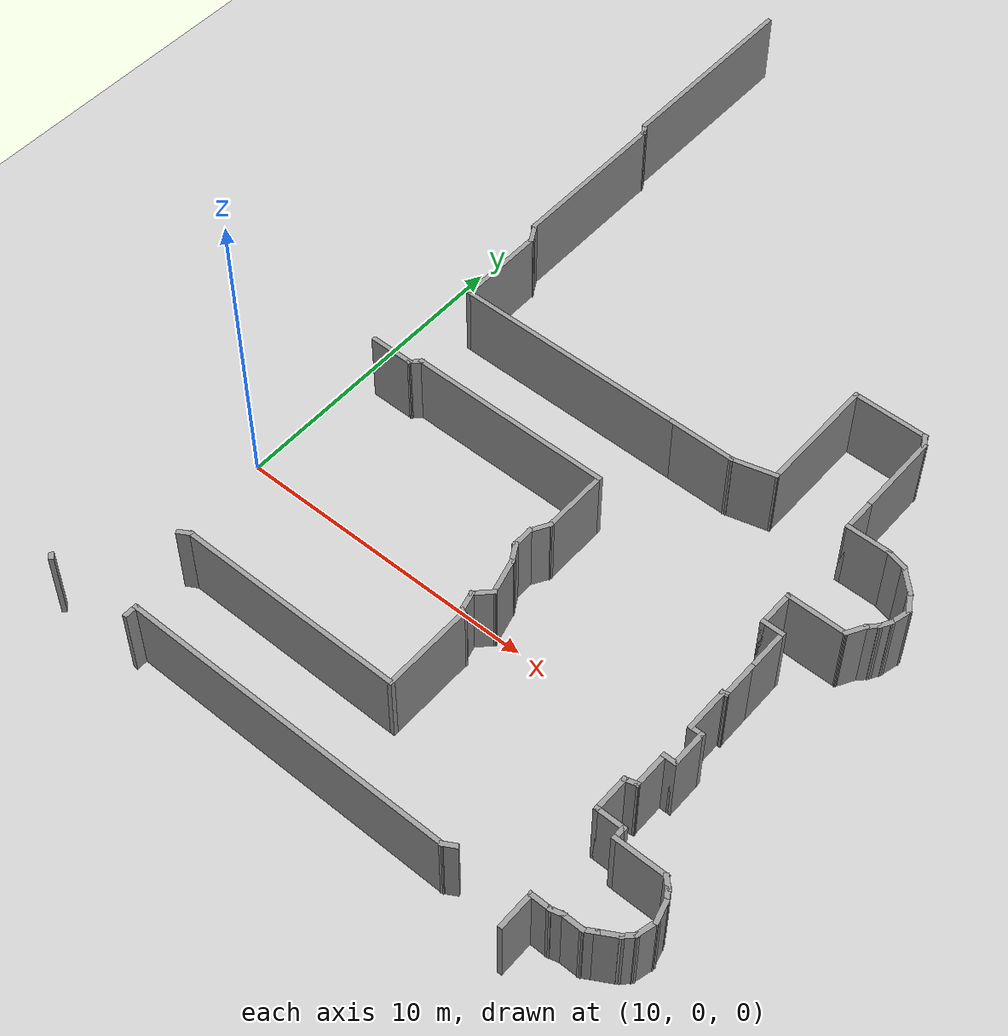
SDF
<sdf version="1.7">
 <world name="default">
  <model name="ground_plane">
   <static>1</static>
   <link name="link">
    <collision name="collision">
     <geometry><plane><normal>0 0 1</normal><size>100 100</size></plane></geometry>
     <surface><friction><ode><mu>100</mu><mu2>50</mu2></ode></friction></surface>
    </collision>
    <visual name="visual">
     <cast_shadows>0</cast_shadows>
     <geometry><plane><normal>0 0 1</normal><size>100 100</size></plane></geometry>
     <material>
      <script><uri>file://media/materials/scripts/gazebo.material</uri><name>Gazebo/Grey</name></script>
     </material>
    </visual>
   </link>
  </model>
  <model name="a10_simulation">
   <pose>8.94312 -0.455858 0 0 -0 0</pose>
   <link name="Wall_100">
    <collision name="Wall_100_Collision">
     <geometry><box><size>1.5 0.15 2.5</size></box></geometry>
     <pose>0 0 1.25 0 -0 0</pose>
    </collision>
    <visual name="Wall_100_Visual">
     <pose>0 0 1.25 0 -0 0</pose>
     <geometry><box><size>1.5 0.15 2.5</size></box></geometry>
     <material>
      <script><uri>file://media/materials/scripts/gazebo.material</uri><name>Gazebo/Grey</name></script>
      <ambient>1 1 1 1</ambient>
     </material>
     <meta><layer>0</layer></meta>
    </visual>
    <pose>16.9784 3.51275 0 0 -0 1.5708</pose>
   </link>
   <link name="Wall_101">
    <collision name="Wall_101_Collision">
     <geometry><box><size>0.75 0.15 2.5</size></box></geometry>
     <pose>0 0 1.25 0 -0 0</pose>
    </collision>
    <visual name="Wall_101_Visual">
     <pose>0 0 1.25 0 -0 0</pose>
     <geometry><box><size>0.75 0.15 2.5</size></box></geometry>
     <material>
      <script><uri>file://media/materials/scripts/gazebo.material</uri><name>Gazebo/Grey</name></script>
      <ambient>1 1 1 1</ambient>
     </material>
     <meta><layer>0</layer></meta>
    </visual>
    <pose>16.6784 4.18775 0 0 -0 3.14159</pose>
   </link>
   <link name="Wall_102">
    <collision name="Wall_102_Collision">
     <geometry><box><size>1.25 0.15 2.5</size></box></geometry>
     <pose>0 0 1.25 0 -0 0</pose>
    </collision>
    <visual name="Wall_102_Visual">
     <pose>0 0 1.25 0 -0 0</pose>
     <geometry><box><size>1.25 0.15 2.5</size></box></geometry>
     <material>
      <script><uri>file://media/materials/scripts/gazebo.material</uri><name>Gazebo/Grey</name></script>
      <ambient>1 1 1 1</ambient>
     </material>
     <meta><layer>0</layer></meta>
    </visual>
    <pose>16.3784 4.73775 0 0 -0 1.5708</pose>
   </link>
   <link name="Wall_103">
    <collision name="Wall_103_Collision">
     <geometry><box><size>2 0.15 2.5</size></box></geometry>
     <pose>0 0 1.25 0 -0 0</pose>
    </collision>
    <visual name="Wall_103_Visual">
     <pose>0 0 1.25 0 -0 0</pose>
     <geometry><box><size>2 0.15 2.5</size></box></geometry>
     <material>
      <script><uri>file://media/materials/scripts/gazebo.material</uri><name>Gazebo/Grey</name></script>
      <ambient>1 1 1 1</ambient>
     </material>
     <meta><layer>0</layer></meta>
    </visual>
    <pose>17.3034 5.28775 0 0 -0 0</pose>
   </link>
   <link name="Wall_104">
    <collision name="Wall_104_Collision">
     <geometry><box><size>0.75 0.15 2.5</size></box></geometry>
     <pose>0 0 1.25 0 -0 0</pose>
    </collision>
    <visual name="Wall_104_Visual">
     <pose>0 0 1.25 0 -0 0</pose>
     <geometry><box><size>0.75 0.15 2.5</size></box></geometry>
     <material>
      <script><uri>file://media/materials/scripts/gazebo.material</uri><name>Gazebo/Grey</name></script>
      <ambient>1 1 1 1</ambient>
     </material>
     <meta><layer>0</layer></meta>
    </visual>
    <pose>18.3784 5.54756 0 0 -0 1.0472</pose>
   </link>
   <link name="Wall_105">
    <collision name="Wall_105_Collision">
     <geometry><box><size>0.5 0.15 2.5</size></box></geometry>
     <pose>0 0 1.25 0 -0 0</pose>
    </collision>
    <visual name="Wall_105_Visual">
     <pose>0 0 1.25 0 -0 0</pose>
     <geometry><box><size>0.5 0.15 2.5</size></box></geometry>
     <material>
      <script><uri>file://media/materials/scripts/gazebo.material</uri><name>Gazebo/Grey</name></script>
      <ambient>1 1 1 1</ambient>
     </material>
     <meta><layer>0</layer></meta>
    </visual>
    <pose>18.6522 5.93111 0 0 -0 0.785398</pose>
   </link>
   <link name="Wall_106">
    <collision name="Wall_106_Collision">
     <geometry><box><size>0.5 0.15 2.5</size></box></geometry>
     <pose>0 0 1.25 0 -0 0</pose>
    </collision>
    <visual name="Wall_106_Visual">
     <pose>0 0 1.25 0 -0 0</pose>
     <geometry><box><size>0.5 0.15 2.5</size></box></geometry>
     <material>
      <script><uri>file://media/materials/scripts/gazebo.material</uri><name>Gazebo/Grey</name></script>
      <ambient>1 1 1 1</ambient>
     </material>
     <meta><layer>0</layer></meta>
    </visual>
    <pose>18.8634 6.20641 0 0 -0 1.0472</pose>
   </link>
   <link name="Wall_107">
    <collision name="Wall_107_Collision">
     <geometry><box><size>0.75 0.15 2.5</size></box></geometry>
     <pose>0 0 1.25 0 -0 0</pose>
    </collision>
    <visual name="Wall_107_Visual">
     <pose>0 0 1.25 0 -0 0</pose>
     <geometry><box><size>0.75 0.15 2.5</size></box></geometry>
     <material>
      <script><uri>file://media/materials/scripts/gazebo.material</uri><name>Gazebo/Grey</name></script>
      <ambient>1 1 1 1</ambient>
     </material>
     <meta><layer>0</layer></meta>
    </visual>
    <pose>19.0286 6.64774 0 0 -0 1.309</pose>
   </link>
   <link name="Wall_108">
    <collision name="Wall_108_Collision">
     <geometry><box><size>0.75 0.15 2.5</size></box></geometry>
     <pose>0 0 1.25 0 -0 0</pose>
    </collision>
    <visual name="Wall_108_Visual">
     <pose>0 0 1.25 0 -0 0</pose>
     <geometry><box><size>0.75 0.15 2.5</size></box></geometry>
     <material>
      <script><uri>file://media/materials/scripts/gazebo.material</uri><name>Gazebo/Grey</name></script>
      <ambient>1 1 1 1</ambient>
     </material>
     <meta><layer>0</layer></meta>
    </visual>
    <pose>18.9562 7.19732 0 0 -0 2.0944</pose>
   </link>
   <link name="Wall_109">
    <collision name="Wall_109_Collision">
     <geometry><box><size>1 0.15 2.5</size></box></geometry>
     <pose>0 0 1.25 0 -0 0</pose>
    </collision>
    <visual name="Wall_109_Visual">
     <pose>0 0 1.25 0 -0 0</pose>
     <geometry><box><size>1 0.15 2.5</size></box></geometry>
     <material>
      <script><uri>file://media/materials/scripts/gazebo.material</uri><name>Gazebo/Grey</name></script>
      <ambient>1 1 1 1</ambient>
     </material>
     <meta><layer>0</layer></meta>
    </visual>
    <pose>18.5057 7.75765 0 0 -0 2.35619</pose>
   </link>
   <link name="Wall_111">
    <collision name="Wall_111_Collision">
     <geometry><box><size>0.75 0.15 2.5</size></box></geometry>
     <pose>0 0 1.25 0 -0 0</pose>
    </collision>
    <visual name="Wall_111_Visual">
     <pose>0 0 1.25 0 -0 0</pose>
     <geometry><box><size>0.75 0.15 2.5</size></box></geometry>
     <material>
      <script><uri>file://media/materials/scripts/gazebo.material</uri><name>Gazebo/Grey</name></script>
      <ambient>1 1 1 1</ambient>
     </material>
     <meta><layer>0</layer></meta>
    </visual>
    <pose>17.9154 8.13582 0 0 -0 2.87979</pose>
   </link>
   <link name="Wall_112">
    <collision name="Wall_112_Collision">
     <geometry><box><size>1.5 0.15 2.5</size></box></geometry>
     <pose>0 0 1.25 0 -0 0</pose>
    </collision>
    <visual name="Wall_112_Visual">
     <pose>0 0 1.25 0 -0 0</pose>
     <geometry><box><size>1.5 0.15 2.5</size></box></geometry>
     <material>
      <script><uri>file://media/materials/scripts/gazebo.material</uri><name>Gazebo/Grey</name></script>
      <ambient>1 1 1 1</ambient>
     </material>
     <meta><layer>0</layer></meta>
    </visual>
    <pose>16.9506 8.21346 0 0 -0 3.14159</pose>
   </link>
   <link name="Wall_113">
    <collision name="Wall_113_Collision">
     <geometry><box><size>1.25 0.15 2.5</size></box></geometry>
     <pose>0 0 1.25 0 -0 0</pose>
    </collision>
    <visual name="Wall_113_Visual">
     <pose>0 0 1.25 0 -0 0</pose>
     <geometry><box><size>1.25 0.15 2.5</size></box></geometry>
     <material>
      <script><uri>file://media/materials/scripts/gazebo.material</uri><name>Gazebo/Grey</name></script>
      <ambient>1 1 1 1</ambient>
     </material>
     <meta><layer>0</layer></meta>
    </visual>
    <pose>16.2756 8.76346 0 0 -0 1.5708</pose>
   </link>
   <link name="Wall_114">
    <collision name="Wall_114_Collision">
     <geometry><box><size>2.75 0.15 2.5</size></box></geometry>
     <pose>0 0 1.25 0 -0 0</pose>
    </collision>
    <visual name="Wall_114_Visual">
     <pose>0 0 1.25 0 -0 0</pose>
     <geometry><box><size>2.75 0.15 2.5</size></box></geometry>
     <material>
      <script><uri>file://media/materials/scripts/gazebo.material</uri><name>Gazebo/Grey</name></script>
      <ambient>1 1 1 1</ambient>
     </material>
     <meta><layer>0</layer></meta>
    </visual>
    <pose>16.2756 10.6135 0 0 -0 1.5708</pose>
   </link>
   <link name="Wall_115">
    <collision name="Wall_115_Collision">
     <geometry><box><size>0.5 0.15 2.5</size></box></geometry>
     <pose>0 0 1.25 0 -0 0</pose>
    </collision>
    <visual name="Wall_115_Visual">
     <pose>0 0 1.25 0 -0 0</pose>
     <geometry><box><size>0.5 0.15 2.5</size></box></geometry>
     <material>
      <script><uri>file://media/materials/scripts/gazebo.material</uri><name>Gazebo/Grey</name></script>
      <ambient>1 1 1 1</ambient>
     </material>
     <meta><layer>0</layer></meta>
    </visual>
    <pose>16.1881 12.065 0 0 -0 2.0944</pose>
   </link>
   <link name="Wall_116">
    <collision name="Wall_116_Collision">
     <geometry><box><size>2.5 0.15 2.5</size></box></geometry>
     <pose>0 0 1.25 0 -0 0</pose>
    </collision>
    <visual name="Wall_116_Visual">
     <pose>0 0 1.25 0 -0 0</pose>
     <geometry><box><size>2.5 0.15 2.5</size></box></geometry>
     <material>
      <script><uri>file://media/materials/scripts/gazebo.material</uri><name>Gazebo/Grey</name></script>
      <ambient>1 1 1 1</ambient>
     </material>
     <meta><layer>0</layer></meta>
    </visual>
    <pose>14.9256 12.2166 0 0 -0 3.14159</pose>
   </link>
   <link name="Wall_117">
    <collision name="Wall_117_Collision">
     <geometry><box><size>4 0.15 2.5</size></box></geometry>
     <pose>0 0 1.25 0 -0 0</pose>
    </collision>
    <visual name="Wall_117_Visual">
     <pose>0 0 1.25 0 -0 0</pose>
     <geometry><box><size>4 0.15 2.5</size></box></geometry>
     <material>
      <script><uri>file://media/materials/scripts/gazebo.material</uri><name>Gazebo/Grey</name></script>
      <ambient>1 1 1 1</ambient>
     </material>
     <meta><layer>0</layer></meta>
    </visual>
    <pose>13.7506 10.2916 0 0 -0 -1.5708</pose>
   </link>
   <link name="Wall_118">
    <collision name="Wall_118_Collision">
     <geometry><box><size>1.5 0.15 2.5</size></box></geometry>
     <pose>0 0 1.25 0 -0 0</pose>
    </collision>
    <visual name="Wall_118_Visual">
     <pose>0 0 1.25 0 -0 0</pose>
     <geometry><box><size>1.5 0.15 2.5</size></box></geometry>
     <material>
      <script><uri>file://media/materials/scripts/gazebo.material</uri><name>Gazebo/Grey</name></script>
      <ambient>1 1 1 1</ambient>
     </material>
     <meta><layer>0</layer></meta>
    </visual>
    <pose>13.0986 8.19187 0 0 -0 -2.87979</pose>
   </link>
   <link name="Wall_119">
    <collision name="Wall_119_Collision">
     <geometry><box><size>2.25 0.15 2.5</size></box></geometry>
     <pose>0 0 1.25 0 -0 0</pose>
    </collision>
    <visual name="Wall_119_Visual">
     <pose>0 0 1.25 0 -0 0</pose>
     <geometry><box><size>2.25 0.15 2.5</size></box></geometry>
     <material>
      <script><uri>file://media/materials/scripts/gazebo.material</uri><name>Gazebo/Grey</name></script>
      <ambient>1 1 1 1</ambient>
     </material>
     <meta><layer>0</layer></meta>
    </visual>
    <pose>11.3966 8.01717 0 0 -0 3.14159</pose>
   </link>
   <link name="Wall_120">
    <collision name="Wall_120_Collision">
     <geometry><box><size>7.75 0.15 2.5</size></box></geometry>
     <pose>0 0 1.25 0 -0 0</pose>
    </collision>
    <visual name="Wall_120_Visual">
     <pose>0 0 1.25 0 -0 0</pose>
     <geometry><box><size>7.75 0.15 2.5</size></box></geometry>
     <material>
      <script><uri>file://media/materials/scripts/gazebo.material</uri><name>Gazebo/Grey</name></script>
      <ambient>1 1 1 1</ambient>
     </material>
     <meta><layer>0</layer></meta>
    </visual>
    <pose>6.54662 8.01717 0 0 -0 3.14159</pose>
   </link>
   <link name="Wall_121">
    <collision name="Wall_121_Collision">
     <geometry><box><size>3 0.15 2.5</size></box></geometry>
     <pose>0 0 1.25 0 -0 0</pose>
    </collision>
    <visual name="Wall_121_Visual">
     <pose>0 0 1.25 0 -0 0</pose>
     <geometry><box><size>3 0.15 2.5</size></box></geometry>
     <material>
      <script><uri>file://media/materials/scripts/gazebo.material</uri><name>Gazebo/Grey</name></script>
      <ambient>1 1 1 1</ambient>
     </material>
     <meta><layer>0</layer></meta>
    </visual>
    <pose>2.74662 9.44217 0 0 -0 1.5708</pose>
   </link>
   <link name="Wall_122">
    <collision name="Wall_122_Collision">
     <geometry><box><size>0.75 0.15 2.5</size></box></geometry>
     <pose>0 0 1.25 0 -0 0</pose>
    </collision>
    <visual name="Wall_122_Visual">
     <pose>0 0 1.25 0 -0 0</pose>
     <geometry><box><size>0.75 0.15 2.5</size></box></geometry>
     <material>
      <script><uri>file://media/materials/scripts/gazebo.material</uri><name>Gazebo/Grey</name></script>
      <ambient>1 1 1 1</ambient>
     </material>
     <meta><layer>0</layer></meta>
    </visual>
    <pose>2.59662 11.127 0 0 -0 2.0944</pose>
   </link>
   <link name="Wall_123">
    <collision name="Wall_123_Collision">
     <geometry><box><size>5.5 0.15 2.5</size></box></geometry>
     <pose>0 0 1.25 0 -0 0</pose>
    </collision>
    <visual name="Wall_123_Visual">
     <pose>0 0 1.25 0 -0 0</pose>
     <geometry><box><size>5.5 0.15 2.5</size></box></geometry>
     <material>
      <script><uri>file://media/materials/scripts/gazebo.material</uri><name>Gazebo/Grey</name></script>
      <ambient>1 1 1 1</ambient>
     </material>
     <meta><layer>0</layer></meta>
    </visual>
    <pose>2.44662 14.0618 0 0 -0 1.5708</pose>
   </link>
   <link name="Wall_125">
    <collision name="Wall_125_Collision">
     <geometry><box><size>0.5 0.15 2.5</size></box></geometry>
     <pose>0 0 1.25 0 -0 0</pose>
    </collision>
    <visual name="Wall_125_Visual">
     <pose>0 0 1.25 0 -0 0</pose>
     <geometry><box><size>0.5 0.15 2.5</size></box></geometry>
     <material>
      <script><uri>file://media/materials/scripts/gazebo.material</uri><name>Gazebo/Grey</name></script>
      <ambient>1 1 1 1</ambient>
     </material>
     <meta><layer>0</layer></meta>
    </visual>
    <pose>2.35912 16.8883 0 0 -0 2.0944</pose>
   </link>
   <link name="Wall_126">
    <collision name="Wall_126_Collision">
     <geometry><box><size>6.75 0.15 2.5</size></box></geometry>
     <pose>0 0 1.25 0 -0 0</pose>
    </collision>
    <visual name="Wall_126_Visual">
     <pose>0 0 1.25 0 -0 0</pose>
     <geometry><box><size>6.75 0.15 2.5</size></box></geometry>
     <material>
      <script><uri>file://media/materials/scripts/gazebo.material</uri><name>Gazebo/Grey</name></script>
      <ambient>1 1 1 1</ambient>
     </material>
     <meta><layer>0</layer></meta>
    </visual>
    <pose>2.27162 20.3399 0 0 -0 1.5708</pose>
   </link>
   <link name="Wall_199">
    <collision name="Wall_199_Collision">
     <geometry><box><size>0.5 0.15 2.5</size></box></geometry>
     <pose>0 0 1.25 0 -0 0</pose>
    </collision>
    <visual name="Wall_199_Visual">
     <pose>0 0 1.25 0 -0 0</pose>
     <geometry><box><size>0.5 0.15 2.5</size></box></geometry>
     <material>
      <script><uri>file://media/materials/scripts/gazebo.material</uri><name>Gazebo/Grey</name></script>
      <ambient>1 1 1 1</ambient>
     </material>
     <meta><layer>0</layer></meta>
    </visual>
    <pose>2.65308 -3.71336 0 0 -0 0.523599</pose>
   </link>
   <link name="Wall_200">
    <collision name="Wall_200_Collision">
     <geometry><box><size>7.5 0.15 2.5</size></box></geometry>
     <pose>0 0 1.25 0 -0 0</pose>
    </collision>
    <visual name="Wall_200_Visual">
     <pose>0 0 1.25 0 -0 0</pose>
     <geometry><box><size>7.5 0.15 2.5</size></box></geometry>
     <material>
      <script><uri>file://media/materials/scripts/gazebo.material</uri><name>Gazebo/Grey</name></script>
      <ambient>1 1 1 1</ambient>
     </material>
     <meta><layer>0</layer></meta>
    </visual>
    <pose>6.47963 -3.62586 0 0 -0 0</pose>
   </link>
   <link name="Wall_201">
    <collision name="Wall_201_Collision">
     <geometry><box><size>3 0.15 2.5</size></box></geometry>
     <pose>0 0 1.25 0 -0 0</pose>
    </collision>
    <visual name="Wall_201_Visual">
     <pose>0 0 1.25 0 -0 0</pose>
     <geometry><box><size>3 0.15 2.5</size></box></geometry>
     <material>
      <script><uri>file://media/materials/scripts/gazebo.material</uri><name>Gazebo/Grey</name></script>
      <ambient>1 1 1 1</ambient>
     </material>
     <meta><layer>0</layer></meta>
    </visual>
    <pose>10.1546 -2.20086 0 0 -0 1.5708</pose>
   </link>
   <link name="Wall_202">
    <collision name="Wall_202_Collision">
     <geometry><box><size>0.25 0.15 2.5</size></box></geometry>
     <pose>0 0 1.25 0 -0 0</pose>
    </collision>
    <visual name="Wall_202_Visual">
     <pose>0 0 1.25 0 -0 0</pose>
     <geometry><box><size>0.25 0.15 2.5</size></box></geometry>
     <material>
      <script><uri>file://media/materials/scripts/gazebo.material</uri><name>Gazebo/Grey</name></script>
      <ambient>1 1 1 1</ambient>
     </material>
     <meta><layer>0</layer></meta>
    </visual>
    <pose>10.1113 -0.75086 0 0 -0 2.61799</pose>
   </link>
   <link name="Wall_203">
    <collision name="Wall_203_Collision">
     <geometry><box><size>0.75 0.15 2.5</size></box></geometry>
     <pose>0 0 1.25 0 -0 0</pose>
    </collision>
    <visual name="Wall_203_Visual">
     <pose>0 0 1.25 0 -0 0</pose>
     <geometry><box><size>0.75 0.15 2.5</size></box></geometry>
     <material>
      <script><uri>file://media/materials/scripts/gazebo.material</uri><name>Gazebo/Grey</name></script>
      <ambient>1 1 1 1</ambient>
     </material>
     <meta><layer>0</layer></meta>
    </visual>
    <pose>9.99038 -0.436082 0 0 -0 1.8326</pose>
   </link>
   <link name="Wall_204">
    <collision name="Wall_204_Collision">
     <geometry><box><size>0.75 0.15 2.5</size></box></geometry>
     <pose>0 0 1.25 0 -0 0</pose>
    </collision>
    <visual name="Wall_204_Visual">
     <pose>0 0 1.25 0 -0 0</pose>
     <geometry><box><size>0.75 0.15 2.5</size></box></geometry>
     <material>
      <script><uri>file://media/materials/scripts/gazebo.material</uri><name>Gazebo/Grey</name></script>
      <ambient>1 1 1 1</ambient>
     </material>
     <meta><layer>0</layer></meta>
    </visual>
    <pose>10.1249 0.065828 0 0 -0 0.785398</pose>
   </link>
   <link name="Wall_205">
    <collision name="Wall_205_Collision">
     <geometry><box><size>1.25 0.15 2.5</size></box></geometry>
     <pose>0 0 1.25 0 -0 0</pose>
    </collision>
    <visual name="Wall_205_Visual">
     <pose>0 0 1.25 0 -0 0</pose>
     <geometry><box><size>1.25 0.15 2.5</size></box></geometry>
     <material>
      <script><uri>file://media/materials/scripts/gazebo.material</uri><name>Gazebo/Grey</name></script>
      <ambient>1 1 1 1</ambient>
     </material>
     <meta><layer>0</layer></meta>
    </visual>
    <pose>10.1946 0.809219 0 0 -0 1.8326</pose>
   </link>
   <link name="Wall_206">
    <collision name="Wall_206_Collision">
     <geometry><box><size>0.75 0.15 2.5</size></box></geometry>
     <pose>0 0 1.25 0 -0 0</pose>
    </collision>
    <visual name="Wall_206_Visual">
     <pose>0 0 1.25 0 -0 0</pose>
     <geometry><box><size>0.75 0.15 2.5</size></box></geometry>
     <material>
      <script><uri>file://media/materials/scripts/gazebo.material</uri><name>Gazebo/Grey</name></script>
      <ambient>1 1 1 1</ambient>
     </material>
     <meta><layer>0</layer></meta>
    </visual>
    <pose>9.9023 1.60029 0 0 -0 2.0944</pose>
   </link>
   <link name="Wall_207">
    <collision name="Wall_207_Collision">
     <geometry><box><size>0.75 0.15 2.5</size></box></geometry>
     <pose>0 0 1.25 0 -0 0</pose>
    </collision>
    <visual name="Wall_207_Visual">
     <pose>0 0 1.25 0 -0 0</pose>
     <geometry><box><size>0.75 0.15 2.5</size></box></geometry>
     <material>
      <script><uri>file://media/materials/scripts/gazebo.material</uri><name>Gazebo/Grey</name></script>
      <ambient>1 1 1 1</ambient>
     </material>
     <meta><layer>0</layer></meta>
    </visual>
    <pose>9.7523 2.16009 0 0 -0 1.5708</pose>
   </link>
   <link name="Wall_208">
    <collision name="Wall_208_Collision">
     <geometry><box><size>0.75 0.15 2.5</size></box></geometry>
     <pose>0 0 1.25 0 -0 0</pose>
    </collision>
    <visual name="Wall_208_Visual">
     <pose>0 0 1.25 0 -0 0</pose>
     <geometry><box><size>0.75 0.15 2.5</size></box></geometry>
     <material>
      <script><uri>file://media/materials/scripts/gazebo.material</uri><name>Gazebo/Grey</name></script>
      <ambient>1 1 1 1</ambient>
     </material>
     <meta><layer>0</layer></meta>
    </visual>
    <pose>9.9023 2.7199 0 0 -0 1.0472</pose>
   </link>
   <link name="Wall_209">
    <collision name="Wall_209_Collision">
     <geometry><box><size>2.25 0.15 2.5</size></box></geometry>
     <pose>0 0 1.25 0 -0 0</pose>
    </collision>
    <visual name="Wall_209_Visual">
     <pose>0 0 1.25 0 -0 0</pose>
     <geometry><box><size>2.25 0.15 2.5</size></box></geometry>
     <material>
      <script><uri>file://media/materials/scripts/gazebo.material</uri><name>Gazebo/Grey</name></script>
      <ambient>1 1 1 1</ambient>
     </material>
     <meta><layer>0</layer></meta>
    </visual>
    <pose>10.0523 4.02971 0 0 -0 1.5708</pose>
   </link>
   <link name="Wall_210">
    <collision name="Wall_210_Collision">
     <geometry><box><size>6.75 0.15 2.5</size></box></geometry>
     <pose>0 0 1.25 0 -0 0</pose>
    </collision>
    <visual name="Wall_210_Visual">
     <pose>0 0 1.25 0 -0 0</pose>
     <geometry><box><size>6.75 0.15 2.5</size></box></geometry>
     <material>
      <script><uri>file://media/materials/scripts/gazebo.material</uri><name>Gazebo/Grey</name></script>
      <ambient>1 1 1 1</ambient>
     </material>
     <meta><layer>0</layer></meta>
    </visual>
    <pose>6.7523 5.07971 0 0 -0 3.14159</pose>
   </link>
   <link name="Wall_211">
    <collision name="Wall_211_Collision">
     <geometry><box><size>0.5 0.15 2.5</size></box></geometry>
     <pose>0 0 1.25 0 -0 0</pose>
    </collision>
    <visual name="Wall_211_Visual">
     <pose>0 0 1.25 0 -0 0</pose>
     <geometry><box><size>0.5 0.15 2.5</size></box></geometry>
     <material>
      <script><uri>file://media/materials/scripts/gazebo.material</uri><name>Gazebo/Grey</name></script>
      <ambient>1 1 1 1</ambient>
     </material>
     <meta><layer>0</layer></meta>
    </visual>
    <pose>3.32856 4.95596 0 0 -0 -2.35619</pose>
   </link>
   <link name="Wall_212">
    <collision name="Wall_212_Collision">
     <geometry><box><size>1.5 0.15 2.5</size></box></geometry>
     <pose>0 0 1.25 0 -0 0</pose>
    </collision>
    <visual name="Wall_212_Visual">
     <pose>0 0 1.25 0 -0 0</pose>
     <geometry><box><size>1.5 0.15 2.5</size></box></geometry>
     <material>
      <script><uri>file://media/materials/scripts/gazebo.material</uri><name>Gazebo/Grey</name></script>
      <ambient>1 1 1 1</ambient>
     </material>
     <meta><layer>0</layer></meta>
    </visual>
    <pose>2.52981 4.83222 0 0 -0 3.14159</pose>
   </link>
   <link name="Wall_33">
    <collision name="Wall_33_Collision">
     <geometry><box><size>0.25 0.15 2.5</size></box></geometry>
     <pose>0 0 1.25 0 -0 0</pose>
    </collision>
    <visual name="Wall_33_Visual">
     <pose>0 0 1.25 0 -0 0</pose>
     <geometry><box><size>0.25 0.15 2.5</size></box></geometry>
     <material>
      <script><uri>file://media/materials/scripts/gazebo.material</uri><name>Gazebo/Grey</name></script>
      <ambient>1 1 1 1</ambient>
     </material>
     <meta><layer>0</layer></meta>
    </visual>
    <pose>0.464548 -6.61153 0 0 -0 -0.785398</pose>
   </link>
   <link name="Wall_66">
    <collision name="Wall_66_Collision">
     <geometry><box><size>0.5 0.15 2.5</size></box></geometry>
     <pose>0 0 1.25 0 -0 0</pose>
    </collision>
    <visual name="Wall_66_Visual">
     <pose>0 0 1.25 0 -0 0</pose>
     <geometry><box><size>0.5 0.15 2.5</size></box></geometry>
     <material>
      <script><uri>file://media/materials/scripts/gazebo.material</uri><name>Gazebo/Grey</name></script>
      <ambient>1 1 1 1</ambient>
     </material>
     <meta><layer>0</layer></meta>
    </visual>
    <pose>3.41016 -6.45067 0 0 -0 1.5708</pose>
   </link>
   <link name="Wall_67">
    <collision name="Wall_67_Collision">
     <geometry><box><size>11 0.15 2.5</size></box></geometry>
     <pose>0 0 1.25 0 -0 0</pose>
    </collision>
    <visual name="Wall_67_Visual">
     <pose>0 0 1.25 0 -0 0</pose>
     <geometry><box><size>11 0.15 2.5</size></box></geometry>
     <material>
      <script><uri>file://media/materials/scripts/gazebo.material</uri><name>Gazebo/Grey</name></script>
      <ambient>1 1 1 1</ambient>
     </material>
     <meta><layer>0</layer></meta>
    </visual>
    <pose>8.83516 -6.27567 0 0 -0 0</pose>
   </link>
   <link name="Wall_68">
    <collision name="Wall_68_Collision">
     <geometry><box><size>0.5 0.15 2.5</size></box></geometry>
     <pose>0 0 1.25 0 -0 0</pose>
    </collision>
    <visual name="Wall_68_Visual">
     <pose>0 0 1.25 0 -0 0</pose>
     <geometry><box><size>0.5 0.15 2.5</size></box></geometry>
     <material>
      <script><uri>file://media/materials/scripts/gazebo.material</uri><name>Gazebo/Grey</name></script>
      <ambient>1 1 1 1</ambient>
     </material>
     <meta><layer>0</layer></meta>
    </visual>
    <pose>14.4117 -6.18817 0 0 -0 0.523599</pose>
   </link>
   <link name="Wall_75">
    <collision name="Wall_75_Collision">
     <geometry><box><size>1.25 0.15 2.5</size></box></geometry>
     <pose>0 0 1.25 0 -0 0</pose>
    </collision>
    <visual name="Wall_75_Visual">
     <pose>0 0 1.25 0 -0 0</pose>
     <geometry><box><size>1.25 0.15 2.5</size></box></geometry>
     <material>
      <script><uri>file://media/materials/scripts/gazebo.material</uri><name>Gazebo/Grey</name></script>
      <ambient>1 1 1 1</ambient>
     </material>
     <meta><layer>0</layer></meta>
    </visual>
    <pose>16.808 -6.4515 0 0 -0 1.5708</pose>
   </link>
   <link name="Wall_76">
    <collision name="Wall_76_Collision">
     <geometry><box><size>0.75 0.15 2.5</size></box></geometry>
     <pose>0 0 1.25 0 -0 0</pose>
    </collision>
    <visual name="Wall_76_Visual">
     <pose>0 0 1.25 0 -0 0</pose>
     <geometry><box><size>0.75 0.15 2.5</size></box></geometry>
     <material>
      <script><uri>file://media/materials/scripts/gazebo.material</uri><name>Gazebo/Grey</name></script>
      <ambient>1 1 1 1</ambient>
     </material>
     <meta><layer>0</layer></meta>
    </visual>
    <pose>17.108 -5.9015 0 0 -0 0</pose>
   </link>
   <link name="Wall_77">
    <collision name="Wall_77_Collision">
     <geometry><box><size>0.5 0.15 2.5</size></box></geometry>
     <pose>0 0 1.25 0 -0 0</pose>
    </collision>
    <visual name="Wall_77_Visual">
     <pose>0 0 1.25 0 -0 0</pose>
     <geometry><box><size>0.5 0.15 2.5</size></box></geometry>
     <material>
      <script><uri>file://media/materials/scripts/gazebo.material</uri><name>Gazebo/Grey</name></script>
      <ambient>1 1 1 1</ambient>
     </material>
     <meta><layer>0</layer></meta>
    </visual>
    <pose>17.577 -5.85621 0 0 -0 0.261799</pose>
   </link>
   <link name="Wall_78">
    <collision name="Wall_78_Collision">
     <geometry><box><size>0.75 0.15 2.5</size></box></geometry>
     <pose>0 0 1.25 0 -0 0</pose>
    </collision>
    <visual name="Wall_78_Visual">
     <pose>0 0 1.25 0 -0 0</pose>
     <geometry><box><size>0.75 0.15 2.5</size></box></geometry>
     <material>
      <script><uri>file://media/materials/scripts/gazebo.material</uri><name>Gazebo/Grey</name></script>
      <ambient>1 1 1 1</ambient>
     </material>
     <meta><layer>0</layer></meta>
    </visual>
    <pose>18.046 -5.81091 0 0 -0 0</pose>
   </link>
   <link name="Wall_79">
    <collision name="Wall_79_Collision">
     <geometry><box><size>0.5 0.15 2.5</size></box></geometry>
     <pose>0 0 1.25 0 -0 0</pose>
    </collision>
    <visual name="Wall_79_Visual">
     <pose>0 0 1.25 0 -0 0</pose>
     <geometry><box><size>0.5 0.15 2.5</size></box></geometry>
     <material>
      <script><uri>file://media/materials/scripts/gazebo.material</uri><name>Gazebo/Grey</name></script>
      <ambient>1 1 1 1</ambient>
     </material>
     <meta><layer>0</layer></meta>
    </visual>
    <pose>18.4976 -5.72341 0 0 -0 0.523599</pose>
   </link>
   <link name="Wall_80">
    <collision name="Wall_80_Collision">
     <geometry><box><size>0.75 0.15 2.5</size></box></geometry>
     <pose>0 0 1.25 0 -0 0</pose>
    </collision>
    <visual name="Wall_80_Visual">
     <pose>0 0 1.25 0 -0 0</pose>
     <geometry><box><size>0.75 0.15 2.5</size></box></geometry>
     <material>
      <script><uri>file://media/materials/scripts/gazebo.material</uri><name>Gazebo/Grey</name></script>
      <ambient>1 1 1 1</ambient>
     </material>
     <meta><layer>0</layer></meta>
    </visual>
    <pose>18.909 -5.48591 0 0 -0 0.523599</pose>
   </link>
   <link name="Wall_81">
    <collision name="Wall_81_Collision">
     <geometry><box><size>0.5 0.15 2.5</size></box></geometry>
     <pose>0 0 1.25 0 -0 0</pose>
    </collision>
    <visual name="Wall_81_Visual">
     <pose>0 0 1.25 0 -0 0</pose>
     <geometry><box><size>0.5 0.15 2.5</size></box></geometry>
     <material>
      <script><uri>file://media/materials/scripts/gazebo.material</uri><name>Gazebo/Grey</name></script>
      <ambient>1 1 1 1</ambient>
     </material>
     <meta><layer>0</layer></meta>
    </visual>
    <pose>19.2925 -5.21217 0 0 -0 0.785398</pose>
   </link>
   <link name="Wall_82">
    <collision name="Wall_82_Collision">
     <geometry><box><size>0.75 0.15 2.5</size></box></geometry>
     <pose>0 0 1.25 0 -0 0</pose>
    </collision>
    <visual name="Wall_82_Visual">
     <pose>0 0 1.25 0 -0 0</pose>
     <geometry><box><size>0.75 0.15 2.5</size></box></geometry>
     <material>
      <script><uri>file://media/materials/scripts/gazebo.material</uri><name>Gazebo/Grey</name></script>
      <ambient>1 1 1 1</ambient>
     </material>
     <meta><layer>0</layer></meta>
    </visual>
    <pose>19.4939 -4.79865 0 0 -0 1.309</pose>
   </link>
   <link name="Wall_84">
    <collision name="Wall_84_Collision">
     <geometry><box><size>0.75 0.15 2.5</size></box></geometry>
     <pose>0 0 1.25 0 -0 0</pose>
    </collision>
    <visual name="Wall_84_Visual">
     <pose>0 0 1.25 0 -0 0</pose>
     <geometry><box><size>0.75 0.15 2.5</size></box></geometry>
     <material>
      <script><uri>file://media/materials/scripts/gazebo.material</uri><name>Gazebo/Grey</name></script>
      <ambient>1 1 1 1</ambient>
     </material>
     <meta><layer>0</layer></meta>
    </visual>
    <pose>19.4939 -4.21909 0 0 -0 1.8326</pose>
   </link>
   <link name="Wall_85">
    <collision name="Wall_85_Collision">
     <geometry><box><size>0.5 0.15 2.5</size></box></geometry>
     <pose>0 0 1.25 0 -0 0</pose>
    </collision>
    <visual name="Wall_85_Visual">
     <pose>0 0 1.25 0 -0 0</pose>
     <geometry><box><size>0.5 0.15 2.5</size></box></geometry>
     <material>
      <script><uri>file://media/materials/scripts/gazebo.material</uri><name>Gazebo/Grey</name></script>
      <ambient>1 1 1 1</ambient>
     </material>
     <meta><layer>0</layer></meta>
    </visual>
    <pose>19.3288 -3.77776 0 0 -0 2.0944</pose>
   </link>
   <link name="Wall_86">
    <collision name="Wall_86_Collision">
     <geometry><box><size>0.5 0.15 2.5</size></box></geometry>
     <pose>0 0 1.25 0 -0 0</pose>
    </collision>
    <visual name="Wall_86_Visual">
     <pose>0 0 1.25 0 -0 0</pose>
     <geometry><box><size>0.5 0.15 2.5</size></box></geometry>
     <material>
      <script><uri>file://media/materials/scripts/gazebo.material</uri><name>Gazebo/Grey</name></script>
      <ambient>1 1 1 1</ambient>
     </material>
     <meta><layer>0</layer></meta>
    </visual>
    <pose>19.1175 -3.50246 0 0 -0 2.35619</pose>
   </link>
   <link name="Wall_87">
    <collision name="Wall_87_Collision">
     <geometry><box><size>1.75 0.15 2.5</size></box></geometry>
     <pose>0 0 1.25 0 -0 0</pose>
    </collision>
    <visual name="Wall_87_Visual">
     <pose>0 0 1.25 0 -0 0</pose>
     <geometry><box><size>1.75 0.15 2.5</size></box></geometry>
     <material>
      <script><uri>file://media/materials/scripts/gazebo.material</uri><name>Gazebo/Grey</name></script>
      <ambient>1 1 1 1</ambient>
     </material>
     <meta><layer>0</layer></meta>
    </visual>
    <pose>18.1938 -3.37872 0 0 -0 3.14159</pose>
   </link>
   <link name="Wall_88">
    <collision name="Wall_88_Collision">
     <geometry><box><size>0.5 0.15 2.5</size></box></geometry>
     <pose>0 0 1.25 0 -0 0</pose>
    </collision>
    <visual name="Wall_88_Visual">
     <pose>0 0 1.25 0 -0 0</pose>
     <geometry><box><size>0.5 0.15 2.5</size></box></geometry>
     <material>
      <script><uri>file://media/materials/scripts/gazebo.material</uri><name>Gazebo/Grey</name></script>
      <ambient>1 1 1 1</ambient>
     </material>
     <meta><layer>0</layer></meta>
    </visual>
    <pose>17.3938 -3.20372 0 0 -0 1.5708</pose>
   </link>
   <link name="Wall_89">
    <collision name="Wall_89_Collision">
     <geometry><box><size>1 0.15 2.5</size></box></geometry>
     <pose>0 0 1.25 0 -0 0</pose>
    </collision>
    <visual name="Wall_89_Visual">
     <pose>0 0 1.25 0 -0 0</pose>
     <geometry><box><size>1 0.15 2.5</size></box></geometry>
     <material>
      <script><uri>file://media/materials/scripts/gazebo.material</uri><name>Gazebo/Grey</name></script>
      <ambient>1 1 1 1</ambient>
     </material>
     <meta><layer>0</layer></meta>
    </visual>
    <pose>16.9688 -3.02872 0 0 -0 3.14159</pose>
   </link>
   <link name="Wall_90">
    <collision name="Wall_90_Collision">
     <geometry><box><size>1.25 0.15 2.5</size></box></geometry>
     <pose>0 0 1.25 0 -0 0</pose>
    </collision>
    <visual name="Wall_90_Visual">
     <pose>0 0 1.25 0 -0 0</pose>
     <geometry><box><size>1.25 0.15 2.5</size></box></geometry>
     <material>
      <script><uri>file://media/materials/scripts/gazebo.material</uri><name>Gazebo/Grey</name></script>
      <ambient>1 1 1 1</ambient>
     </material>
     <meta><layer>0</layer></meta>
    </visual>
    <pose>16.5438 -2.47872 0 0 -0 1.5708</pose>
   </link>
   <link name="Wall_91">
    <collision name="Wall_91_Collision">
     <geometry><box><size>0.5 0.15 2.5</size></box></geometry>
     <pose>0 0 1.25 0 -0 0</pose>
    </collision>
    <visual name="Wall_91_Visual">
     <pose>0 0 1.25 0 -0 0</pose>
     <geometry><box><size>0.5 0.15 2.5</size></box></geometry>
     <material>
      <script><uri>file://media/materials/scripts/gazebo.material</uri><name>Gazebo/Grey</name></script>
      <ambient>1 1 1 1</ambient>
     </material>
     <meta><layer>0</layer></meta>
    </visual>
    <pose>16.7128 -1.88343 0 0 -0 0.261799</pose>
   </link>
   <link name="Wall_92">
    <collision name="Wall_92_Collision">
     <geometry><box><size>1.25 0.15 2.5</size></box></geometry>
     <pose>0 0 1.25 0 -0 0</pose>
    </collision>
    <visual name="Wall_92_Visual">
     <pose>0 0 1.25 0 -0 0</pose>
     <geometry><box><size>1.25 0.15 2.5</size></box></geometry>
     <material>
      <script><uri>file://media/materials/scripts/gazebo.material</uri><name>Gazebo/Grey</name></script>
      <ambient>1 1 1 1</ambient>
     </material>
     <meta><layer>0</layer></meta>
    </visual>
    <pose>16.8818 -1.28813 0 0 -0 1.5708</pose>
   </link>
   <link name="Wall_93">
    <collision name="Wall_93_Collision">
     <geometry><box><size>0.5 0.15 2.5</size></box></geometry>
     <pose>0 0 1.25 0 -0 0</pose>
    </collision>
    <visual name="Wall_93_Visual">
     <pose>0 0 1.25 0 -0 0</pose>
     <geometry><box><size>0.5 0.15 2.5</size></box></geometry>
     <material>
      <script><uri>file://media/materials/scripts/gazebo.material</uri><name>Gazebo/Grey</name></script>
      <ambient>1 1 1 1</ambient>
     </material>
     <meta><layer>0</layer></meta>
    </visual>
    <pose>17.0568 -0.738133 0 0 -0 0</pose>
   </link>
   <link name="Wall_94">
    <collision name="Wall_94_Collision">
     <geometry><box><size>1.25 0.15 2.5</size></box></geometry>
     <pose>0 0 1.25 0 -0 0</pose>
    </collision>
    <visual name="Wall_94_Visual">
     <pose>0 0 1.25 0 -0 0</pose>
     <geometry><box><size>1.25 0.15 2.5</size></box></geometry>
     <material>
      <script><uri>file://media/materials/scripts/gazebo.material</uri><name>Gazebo/Grey</name></script>
      <ambient>1 1 1 1</ambient>
     </material>
     <meta><layer>0</layer></meta>
    </visual>
    <pose>17.2318 -0.188133 0 0 -0 1.5708</pose>
   </link>
   <link name="Wall_95">
    <collision name="Wall_95_Collision">
     <geometry><box><size>0.5 0.15 2.5</size></box></geometry>
     <pose>0 0 1.25 0 -0 0</pose>
    </collision>
    <visual name="Wall_95_Visual">
     <pose>0 0 1.25 0 -0 0</pose>
     <geometry><box><size>0.5 0.15 2.5</size></box></geometry>
     <material>
      <script><uri>file://media/materials/scripts/gazebo.material</uri><name>Gazebo/Grey</name></script>
      <ambient>1 1 1 1</ambient>
     </material>
     <meta><layer>0</layer></meta>
    </visual>
    <pose>17.0568 0.361867 0 0 -0 3.14159</pose>
   </link>
   <link name="Wall_97">
    <collision name="Wall_97_Collision">
     <geometry><box><size>1.5 0.15 2.5</size></box></geometry>
     <pose>0 0 1.25 0 -0 0</pose>
    </collision>
    <visual name="Wall_97_Visual">
     <pose>0 0 1.25 0 -0 0</pose>
     <geometry><box><size>1.5 0.15 2.5</size></box></geometry>
     <material>
      <script><uri>file://media/materials/scripts/gazebo.material</uri><name>Gazebo/Grey</name></script>
      <ambient>1 1 1 1</ambient>
     </material>
     <meta><layer>0</layer></meta>
    </visual>
    <pose>16.8818 1.03687 0 0 -0 1.5708</pose>
   </link>
   <link name="Wall_98">
    <collision name="Wall_98_Collision">
     <geometry><box><size>0.25 0.15 2.5</size></box></geometry>
     <pose>0 0 1.25 0 -0 0</pose>
    </collision>
    <visual name="Wall_98_Visual">
     <pose>0 0 1.25 0 -0 0</pose>
     <geometry><box><size>0.25 0.15 2.5</size></box></geometry>
     <material>
      <script><uri>file://media/materials/scripts/gazebo.material</uri><name>Gazebo/Grey</name></script>
      <ambient>1 1 1 1</ambient>
     </material>
     <meta><layer>0</layer></meta>
    </visual>
    <pose>16.9301 1.72481 0 0 -0 0.261799</pose>
   </link>
   <link name="Wall_99">
    <collision name="Wall_99_Collision">
     <geometry><box><size>1.25 0.15 2.5</size></box></geometry>
     <pose>0 0 1.25 0 -0 0</pose>
    </collision>
    <visual name="Wall_99_Visual">
     <pose>0 0 1.25 0 -0 0</pose>
     <geometry><box><size>1.25 0.15 2.5</size></box></geometry>
     <material>
      <script><uri>file://media/materials/scripts/gazebo.material</uri><name>Gazebo/Grey</name></script>
      <ambient>1 1 1 1</ambient>
     </material>
     <meta><layer>0</layer></meta>
    </visual>
    <pose>16.9784 2.28775 0 0 -0 1.5708</pose>
   </link>
   <static>1</static>
  </model>
 </world>
</sdf>
